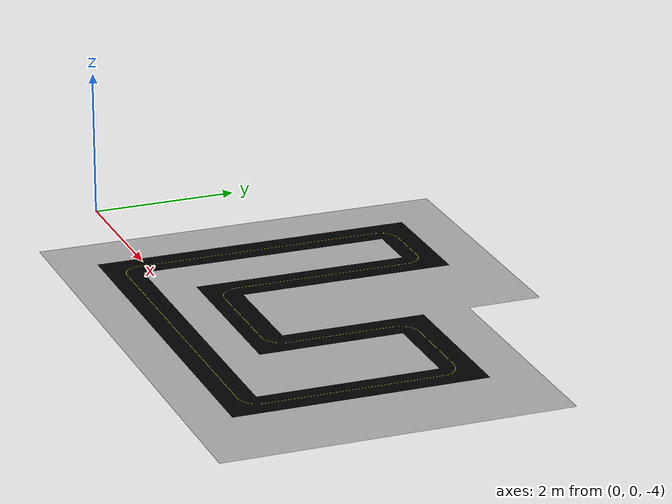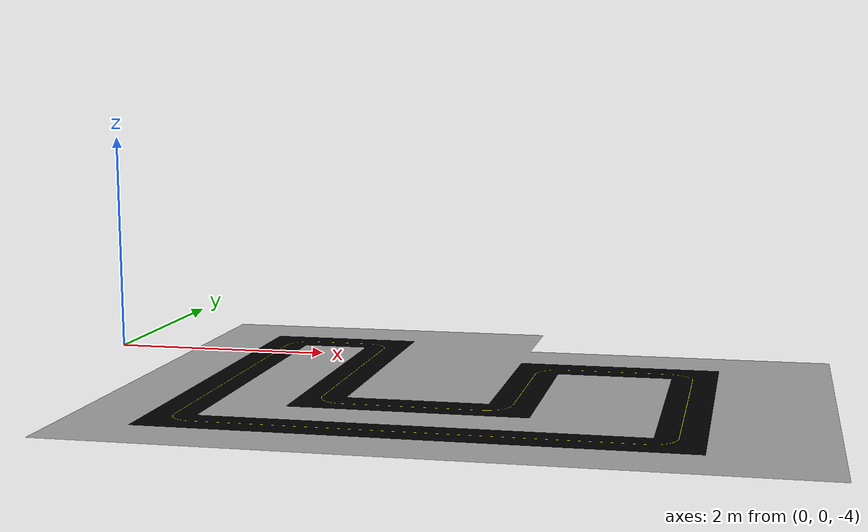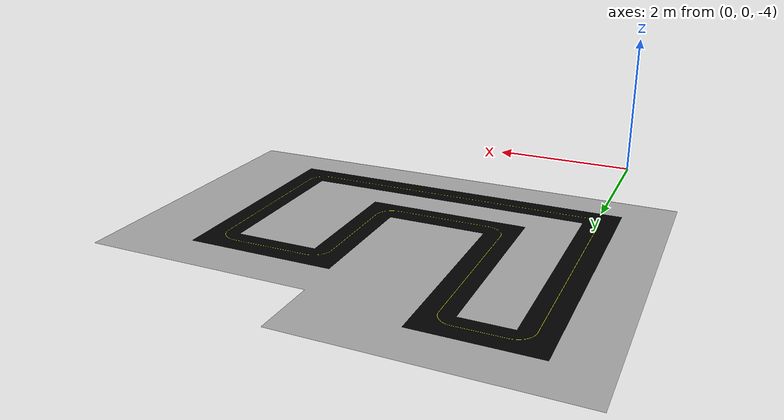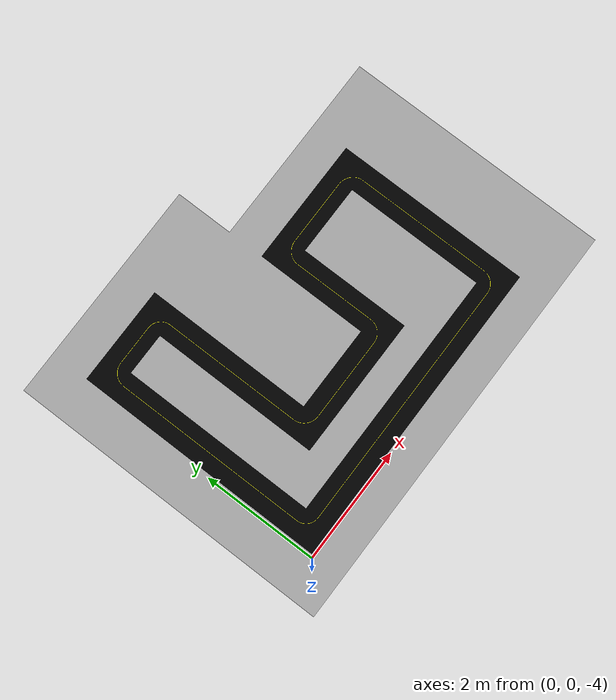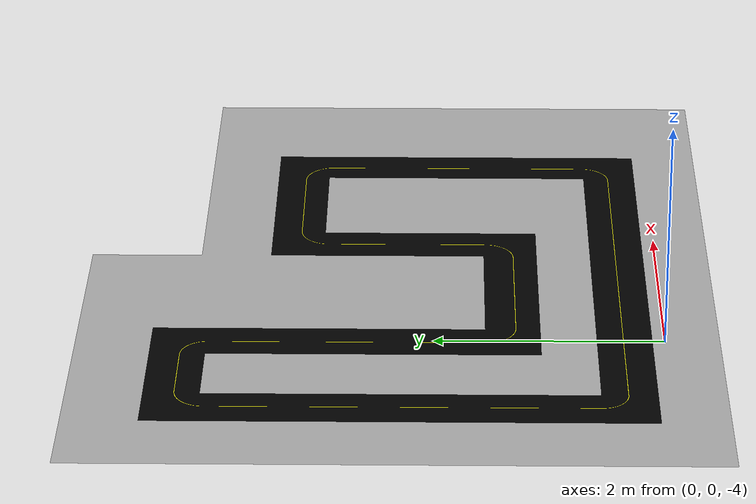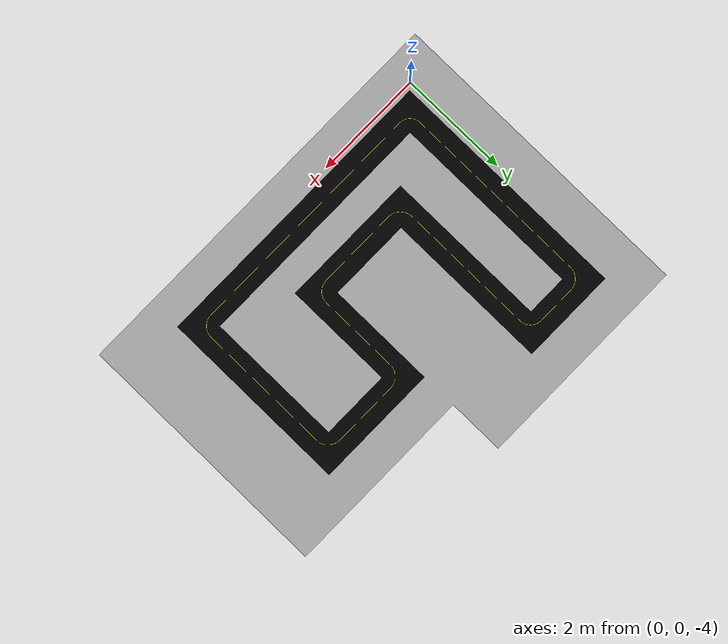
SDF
<?xml version="1.0" ?>
<sdf version="1.6">
  <model name="sonoma_raceway">
    <pose>0 0 -4.8 0 0 0</pose>
    <static>true</static>
    <link name="link">
      <collision name="collision">
        <geometry>
          <mesh>
            <uri>model://LineTrack/PISTA4_updated.dae</uri>
            <scale>0.0254 0.0254 0.0254</scale>
          </mesh>
        </geometry>
      </collision>

      <visual name="visual">
        <geometry>
          <mesh>
            <uri>model://LineTrack/PISTA4_updated.dae</uri>
            <scale>0.0254 0.0254 0.0254</scale>
          </mesh>
        </geometry>
      </visual>
    </link>
  </model>
</sdf>
